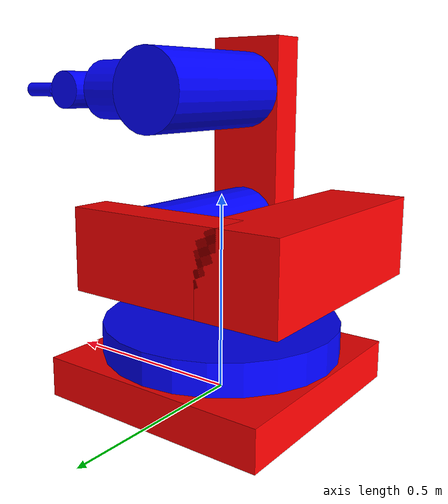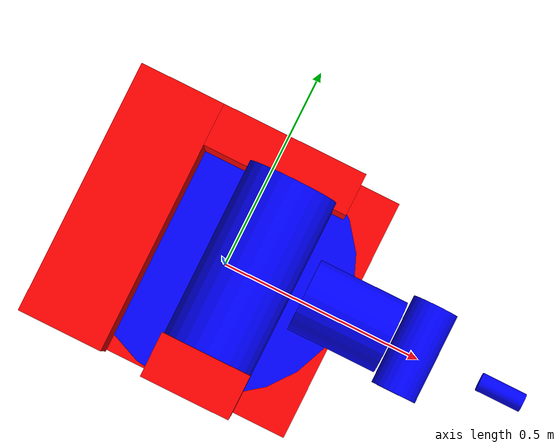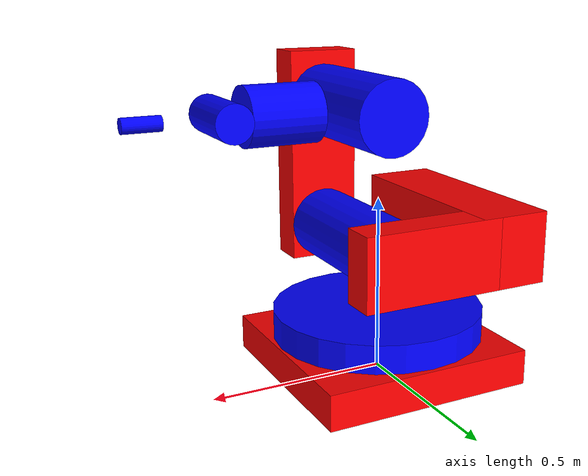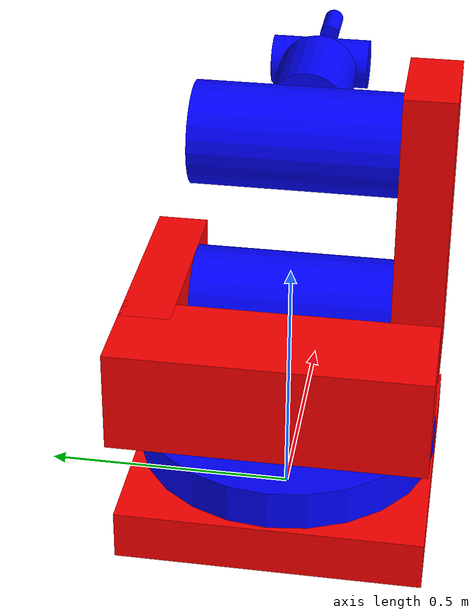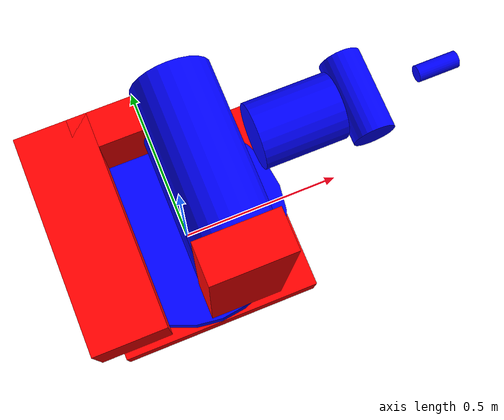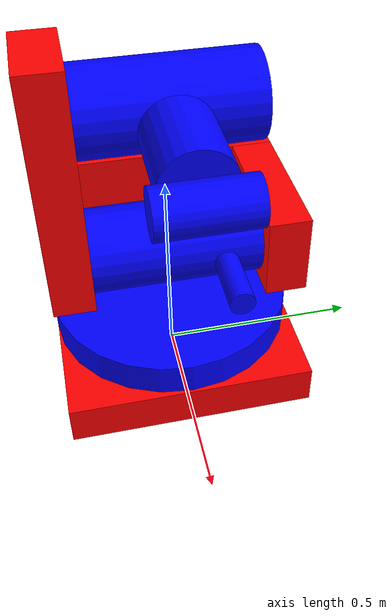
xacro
<?xml version="1.0"?>
<robot name="abb_irb140" xmlns:xacro="http://ros.org/wiki/xacro">

  <xacro:include filename="irb140_description.xacro" />

<ros2_control name="MyRobot" type="system">
  <hardware>
    <plugin>gz_ros2_control/GazeboSimSystem</plugin>
  </hardware>

  <joint name="position_joint_0">
    <command_interface name="position" />
    <state_interface name="position" />
  </joint>

  <joint name="position_joint_1">
    <command_interface name="position" />
    <state_interface name="position" />
  </joint>

  <joint name="position_joint_2">
    <command_interface name="position" />
    <state_interface name="position" />
  </joint>

  <joint name="position_joint_3">
    <command_interface name="position" />
    <state_interface name="position" />
  </joint>

  <joint name="position_joint_4">
    <command_interface name="position" />
    <state_interface name="position" />
  </joint>

  <joint name="position_joint_5">
    <command_interface name="position" />
    <state_interface name="position" />
  </joint>
</ros2_control>

<gazebo>
  <plugin name="gz_ros2_control::GazeboSimROS2ControlPlugin" filename="libgz_ros2_control-system.so">
  <parameters>$(find abb_gz_bringup)/config/controllers.yaml</parameters>
  </plugin>
</gazebo>

<gazebo reference="position_joint_0">
  <ros2_control>
    <command_interface>position</command_interface>
    <state_interface>position</state_interface>
  </ros2_control>
</gazebo>

<gazebo reference="position_joint_1">
  <ros2_control>
    <command_interface>position</command_interface>
    <state_interface>position</state_interface>
  </ros2_control>
</gazebo>

<gazebo reference="position_joint_2">
  <ros2_control>
    <command_interface>position</command_interface>
    <state_interface>position</state_interface>
  </ros2_control>
</gazebo>

<gazebo reference="position_joint_3">
  <ros2_control>
    <command_interface>position</command_interface>
    <state_interface>position</state_interface>
  </ros2_control>
</gazebo>

<gazebo reference="position_joint_4">
  <ros2_control>
    <command_interface>position</command_interface>
    <state_interface>position</state_interface>
  </ros2_control>
</gazebo>

<gazebo reference="position_joint_5">
  <ros2_control>
    <command_interface>position</command_interface>
    <state_interface>position</state_interface>
  </ros2_control>
</gazebo>

</robot>

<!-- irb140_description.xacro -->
<robot xmlns:xacro="http://www.ros.org/wiki/xacro" name="abb_robot">

  <!-- Materials for visualization -->
  <material name="red">
    <color rgba="1 0 0 1"/>
  </material>

  <material name="blue">
    <color rgba="0 0 1 1"/>
  </material>

  <!-- Base link (world reference) -->
  <link name="world_0"/>

  <!-- ABB Base Link -->
  <link name="abb_base">
    <visual>
      <origin xyz="0 0 0" rpy="0 0 0"/>
      <geometry>
        <box size="0.6 0.6 0.1"/>
      </geometry>
      <material name="red"/>
    </visual>
    <collision>
      <origin xyz="0 0 0" rpy="0 0 0"/>
      <geometry>
        <box size="0.6 0.6 0.1"/>
      </geometry>
    </collision>
    <inertial>
      <origin xyz="0 0 0" rpy="0 0 0"/>
      <mass value="1000"/>
      <inertia ixx="5.05" ixy="0.0" ixz="0.0" iyy="5.05" iyz="0.0" izz="10.0"/>
    </inertial>
  </link>

  <joint name="world_to_base" type="fixed">
    <parent link="world_0"/>
    <child link="abb_base"/>
    <origin xyz="0 0 0.05" rpy="0 0 0"/>
  </joint>

  <!-- First Joint Body -->
  <link name="first_joint_body">
    <visual>
      <origin xyz="0 0 -0.245" rpy="0 0 0"/>
      <geometry>
        <cylinder radius="0.3" length="0.08"/>
      </geometry>
      <material name="blue"/>
    </visual>
    <visual>
      <origin xyz="-0.245 0 0" rpy="0 0 0"/>
      <geometry>
        <box size="0.2 0.6 0.2"/>
      </geometry>
      <material name="red"/>
    </visual>
    <visual>
      <origin xyz="0 0.25 0" rpy="0 0 0"/>
      <geometry>
        <box size="0.4 0.1 0.2"/>
      </geometry>
      <material name="red"/>
    </visual>
    <collision>
      <origin xyz="0 0 -0.245" rpy="0 0 0"/>
      <geometry>
        <cylinder radius="0.3" length="0.08"/>
      </geometry>
    </collision>
    <collision>
      <origin xyz="-0.245 0 0" rpy="0 0 0"/>
      <geometry>
        <box size="0.2 0.6 0.2"/>
      </geometry>
    </collision>
    <collision>
      <origin xyz="0 0.25 0" rpy="0 0 0"/>
      <geometry>
        <box size="0.4 0.1 0.2"/>
      </geometry>
    </collision>
    <inertial>
      <origin xyz="0 0 0" rpy="0 0 0"/>
      <mass value="10"/>
      <inertia ixx="0.5" ixy="0.0" ixz="0.0" iyy="0.5" iyz="0.0" izz="0.8"/>
    </inertial>
  </link>

  <joint name="position_joint_0" type="revolute">
    <parent link="abb_base"/>
    <child link="first_joint_body"/>
    <origin xyz="0 0 0.342" rpy="0 0 0"/>
    <axis xyz="0 0 1"/>
    <limit lower="-3.14159" upper="3.14159" effort="1000" velocity="2.0"/>
    <dynamics damping="0.7" friction="0.0"/>
  </joint>

  <!-- Second Joint Body -->
  <link name="second_joint_body">
    <visual>
      <origin xyz="0 0 0" rpy="0 0 0"/>
      <geometry>
        <cylinder radius="0.1" length="0.4"/>
      </geometry>
      <material name="blue"/>
    </visual>
    <visual>
      <origin xyz="0.2 0 0.25" rpy="0 0 0"/>
      <geometry>
        <box size="0.6 0.2 0.1"/>
      </geometry>
      <material name="red"/>
    </visual>
    <collision>
      <origin xyz="0 0 0" rpy="0 0 0"/>
      <geometry>
        <cylinder radius="0.1" length="0.4"/>
      </geometry>
    </collision>
    <collision>
      <origin xyz="0.2 0 0.25" rpy="0 0 0"/>
      <geometry>
        <box size="0.6 0.2 0.1"/>
      </geometry>
    </collision>
    <inertial>
      <origin xyz="0.2 0 0.25" rpy="0 0 0"/>
      <mass value="8"/>
      <inertia ixx="0.3" ixy="0.0" ixz="0.0" iyy="0.5" iyz="0.0" izz="0.4"/>
    </inertial>
  </link>

  <joint name="position_joint_1" type="revolute">
    <parent link="first_joint_body"/>
    <child link="second_joint_body"/>
    <origin xyz="0.06988 0 0" rpy="1.5708 -1.5708 0"/>
    <axis xyz="0 0 1"/>
    <limit lower="-3.14159" upper="3.14159" effort="1000" velocity="2.0"/>
    <dynamics damping="0.7" friction="0.0"/>
  </joint>

  <!-- Third Joint Body -->
  <link name="third_joint_body">
    <visual>
      <origin xyz="0 0 0" rpy="0 0 0"/>
      <geometry>
        <cylinder radius="0.1" length="0.4"/>
      </geometry>
      <material name="blue"/>
    </visual>
    <collision>
      <origin xyz="0 0 0" rpy="0 0 0"/>
      <geometry>
        <cylinder radius="0.1" length="0.4"/>
      </geometry>
    </collision>
    <inertial>
      <origin xyz="0 0 0" rpy="0 0 0"/>
      <mass value="5"/>
      <inertia ixx="0.15" ixy="0.0" ixz="0.0" iyy="0.15" iyz="0.0" izz="0.05"/>
    </inertial>
  </link>

  <joint name="position_joint_2" type="revolute">
    <parent link="second_joint_body"/>
    <child link="third_joint_body"/>
    <origin xyz="0.362 0 0" rpy="0 0 3.14159"/>
    <axis xyz="0 0 1"/>
    <limit lower="-3.14159" upper="3.14159" effort="1000" velocity="2.0"/>
    <dynamics damping="0.7" friction="0.0"/>
  </joint>

  <!-- Fourth Joint Body -->
  <link name="fourth_joint_body">
    <visual>
      <origin xyz="0 0 0.155" rpy="0 0 0"/>
      <geometry>
        <cylinder radius="0.08" length="0.2"/>
      </geometry>
      <material name="blue"/>
    </visual>
    <collision>
      <origin xyz="0 0 0.155" rpy="0 0 0"/>
      <geometry>
        <cylinder radius="0.08" length="0.2"/>
      </geometry>
    </collision>
    <inertial>
      <origin xyz="0 0 0.155" rpy="0 0 0"/>
      <mass value="3"/>
      <inertia ixx="0.05" ixy="0.0" ixz="0.0" iyy="0.05" iyz="0.0" izz="0.02"/>
    </inertial>
  </link>

  <joint name="position_joint_3" type="revolute">
    <parent link="third_joint_body"/>
    <child link="fourth_joint_body"/>
    <origin xyz="0 0.380 0" rpy="-1.5708 0 3.14159"/>
    <axis xyz="0 0 1"/>
    <limit lower="-3.14159" upper="3.14159" effort="1000" velocity="2.0"/>
    <dynamics damping="0.5" friction="0.0"/>
  </joint>

  <!-- Fifth Joint Body -->
  <link name="fifth_joint_body">
    <visual>
      <origin xyz="0 0 0" rpy="0 0 0"/>
      <geometry>
        <cylinder radius="0.05" length="0.2"/>
      </geometry>
      <material name="blue"/>
    </visual>
    <collision>
      <origin xyz="0 0 0" rpy="0 0 0"/>
      <geometry>
        <cylinder radius="0.05" length="0.2"/>
      </geometry>
    </collision>
    <inertial>
      <origin xyz="0 0 0" rpy="0 0 0"/>
      <mass value="2"/>
      <inertia ixx="0.02" ixy="0.0" ixz="0.0" iyy="0.02" iyz="0.0" izz="0.01"/>
    </inertial>
  </link>

  <joint name="position_joint_4" type="revolute">
    <parent link="fourth_joint_body"/>
    <child link="fifth_joint_body"/>
    <origin xyz="0 0 0" rpy="-1.5708 0 3.14159"/>
    <axis xyz="0 0 1"/>
    <limit lower="-3.14159" upper="3.14159" effort="1000" velocity="2.0"/>
    <dynamics damping="0.5" friction="0.0"/>
  </joint>

  <!-- Sixth Joint Body (End Effector) -->
  <link name="sixth_joint_body">
    <visual>
      <origin xyz="0 0 0.05" rpy="0 0 0"/>
      <geometry>
        <cylinder radius="0.02" length="0.1"/>
      </geometry>
      <material name="blue"/>
    </visual>
    <collision>
      <origin xyz="0 0 0.05" rpy="0 0 0"/>
      <geometry>
        <cylinder radius="0.02" length="0.1"/>
      </geometry>
    </collision>
    <inertial>
      <origin xyz="0 0 0.05" rpy="0 0 0"/>
      <mass value="0.5"/>
      <inertia ixx="0.001" ixy="0.0" ixz="0.0" iyy="0.001" iyz="0.0" izz="0.0005"/>
    </inertial>
  </link>

  <joint name="position_joint_5" type="revolute">
    <parent link="fifth_joint_body"/>
    <child link="sixth_joint_body"/>
    <origin xyz="0 0.25 0" rpy="-1.5708 0 3.14159"/>
    <axis xyz="0 0 1"/>
    <limit lower="-3.14159" upper="3.14159" effort="1000" velocity="2.0"/>
    <dynamics damping="0.3" friction="0.0"/>
  </joint>

  <!-- End Effector Link (for TCP) -->
  <link name="tool">
    <inertial>
      <origin xyz="0 0 0" rpy="0 0 0"/>
      <mass value="0.1"/>
      <inertia ixx="0.0001" ixy="0.0" ixz="0.0" iyy="0.0001" iyz="0.0" izz="0.0001"/>
    </inertial>
  </link>

  <joint name="tool_joint" type="fixed">
    <parent link="sixth_joint_body"/>
    <child link="tool"/>
    <origin xyz="0 0 0" rpy="0 0 0"/>
  </joint>

  <!-- Gazebo-specific tags -->
  <gazebo reference="abb_base">
    <material>Gazebo/Red</material>
    <mu1>0.2</mu1>
    <mu2>0.2</mu2>
    <self_collide>0</self_collide>
  </gazebo>

  <gazebo reference="first_joint_body">
    <material>Gazebo/Blue</material>
    <mu1>0.2</mu1>
    <mu2>0.2</mu2>
  </gazebo>

  <gazebo reference="second_joint_body">
    <material>Gazebo/Blue</material>
    <mu1>0.2</mu1>
    <mu2>0.2</mu2>
  </gazebo>

  <gazebo reference="third_joint_body">
    <material>Gazebo/Blue</material>
    <mu1>0.2</mu1>
    <mu2>0.2</mu2>
  </gazebo>

  <gazebo reference="fourth_joint_body">
    <material>Gazebo/Blue</material>
    <mu1>0.2</mu1>
    <mu2>0.2</mu2>
  </gazebo>

  <gazebo reference="fifth_joint_body">
    <material>Gazebo/Blue</material>
    <mu1>0.2</mu1>
    <mu2>0.2</mu2>
  </gazebo>

  <gazebo reference="sixth_joint_body">
    <material>Gazebo/Blue</material>
    <mu1>0.2</mu1>
    <mu2>0.2</mu2>
  </gazebo>

</robot>
